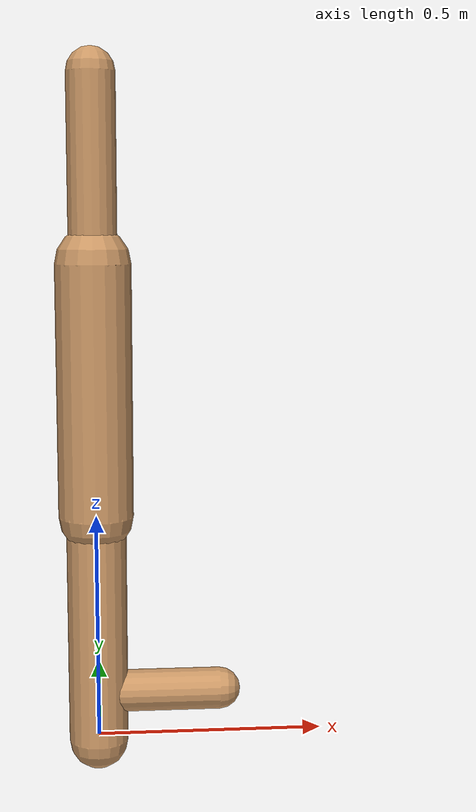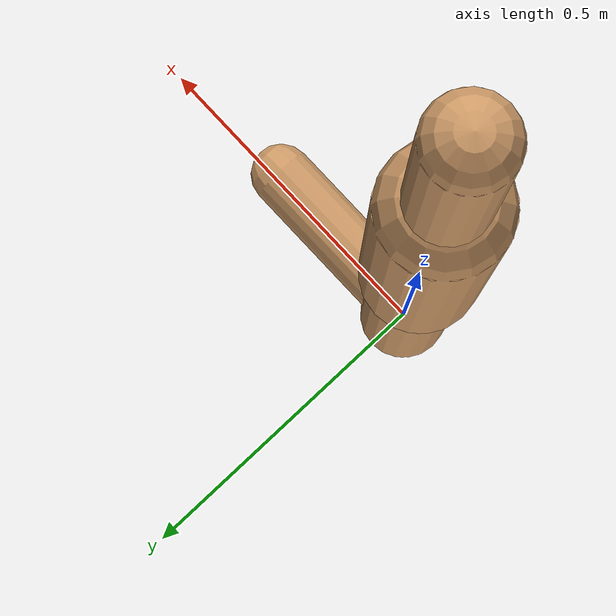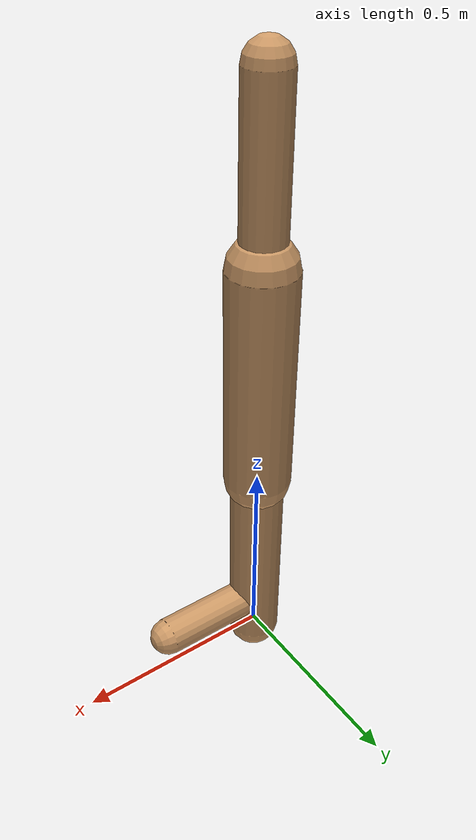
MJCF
<mujoco model="walker2d">
  <compiler angle="degree" coordinate="global" inertiafromgeom="true" />
  <default>
    <joint armature="0.01" damping=".1" limited="true" />
    <geom conaffinity="0" condim="3" contype="1" density="1000" friction="0.8 .1 .1" rgba="0.8 0.6 .4 1" />
  </default>
  <option integrator="RK4" timestep="0.002" />
  <worldbody>

    <body name="torso" pos="0 0 0.21080754856794287">
      <joint armature="0" axis="1 0 0" damping="0" limited="false" name="ignorex" pos="0 0 0" stiffness="0" type="slide" />
      <joint armature="0" axis="0 0 1" damping="0" limited="false" name="ignorez" pos="0 0 0" ref="1.25" stiffness="0" type="slide" />
      <joint armature="0" axis="0 1 0" damping="0" limited="false" name="ignorey" pos="0 0 0" stiffness="0" type="hinge" />
      <geom fromto="0 0 1.45 0 0 1.05" name="torso_geom" size="0.05228715226232159" type="capsule" />
      <body name="thigh">
        <joint axis="0 -1 0" name="thigh_joint" pos="0 0 1.05" range="-150 0" type="hinge" />
        <geom fromto="0.0 0.0 1.05 0.0 0.0 0.500143792783606" name="thigh_geom" size="0.08199068930386842" type="capsule" />
        <body name="leg" pos="0.0 0.0 -0.09985620721639399">
          <joint axis="0 -1 0" name="leg_joint" pos="0 0 0.6" range="-150 0" type="hinge" />
          <geom fromto="0.0 0.0 0.6 0.0 0.0 -0.010951341351548863" name="leg_geom" size="0.06559255144309473" type="capsule" />
          <body name="foot" pos="0.0 0.0 -0.11095134135154887">
            <joint axis="0 -1 0" name="foot_joint" pos="0 0 0.1" range="-45 45" type="hinge" />
            <geom fromto="-0.0 0.0 0.09999999999999998 0.2714486090296568 0.0 0.09999999999999998" name="foot_geom" size="0.046222871952296234" type="capsule" />
          </body>
        </body>
      </body>

      <body name="thigh_left">
        <joint axis="0 -1 0" name="thigh_left_joint" pos="0 0 1.05" range="-150 0" type="hinge" />
        <geom fromto="0.0 0.0 1.05 0.0 0.0 0.500143792783606" name="thigh_left_geom" rgba=".7 .3 .6 1" size="0.08199068930386842" type="capsule" />
        <body name="leg_left" pos="0.0 0.0 -0.09985620721639399">
          <joint axis="0 -1 0" name="leg_left_joint" pos="0 0 0.6" range="-150 0" type="hinge" />
          <geom fromto="0.0 0.0 0.6 0.0 0.0 -0.010951341351548863" name="leg_left_geom" rgba=".7 .3 .6 1" size="0.06559255144309473" type="capsule" />
          <body name="foot_left" pos="0.0 0.0 -0.11095134135154887">
            <joint axis="0 -1 0" name="foot_left_joint" pos="0 0 0.1" range="-45 45" type="hinge" />
            <geom fromto="-0.0 0.0 0.09999999999999998 0.2714486090296568 0.0 0.09999999999999998" name="foot_left_geom" rgba=".7 .3 .6 1" size="0.046222871952296234" type="capsule" />
          </body>
        </body>
      </body>
    </body>
  </worldbody>
  <actuator>

    <motor ctrllimited="true" ctrlrange="-1.0 1.0" gear="100" joint="thigh_joint" />
    <motor ctrllimited="true" ctrlrange="-1.0 1.0" gear="100" joint="leg_joint" />
    <motor ctrllimited="true" ctrlrange="-1.0 1.0" gear="100" joint="foot_joint" />
    <motor ctrllimited="true" ctrlrange="-1.0 1.0" gear="100" joint="thigh_left_joint" />
    <motor ctrllimited="true" ctrlrange="-1.0 1.0" gear="100" joint="leg_left_joint" />
    <motor ctrllimited="true" ctrlrange="-1.0 1.0" gear="100" joint="foot_left_joint" />

  </actuator>
</mujoco>
